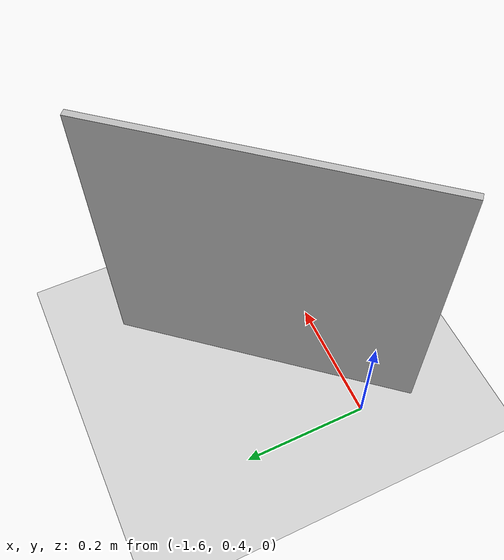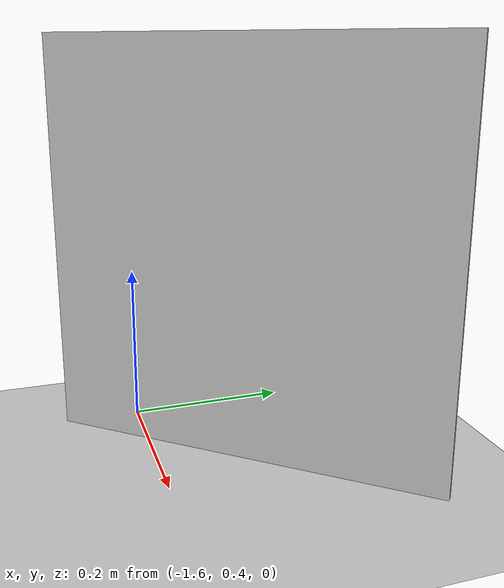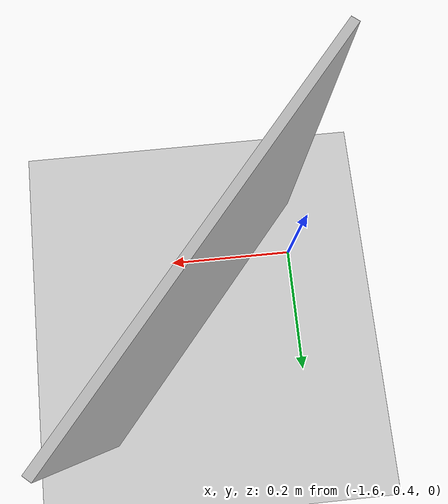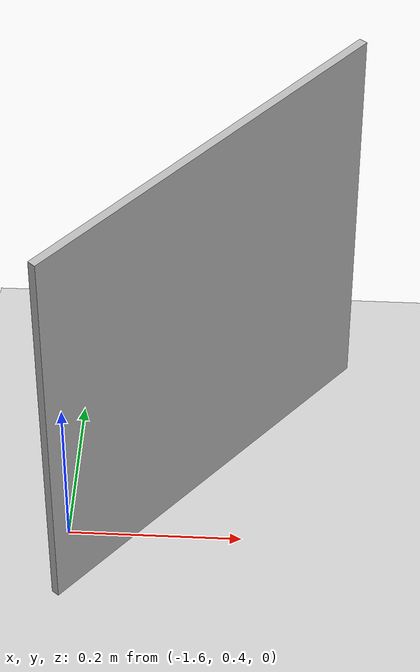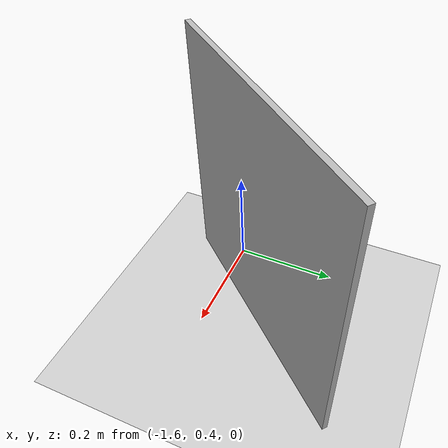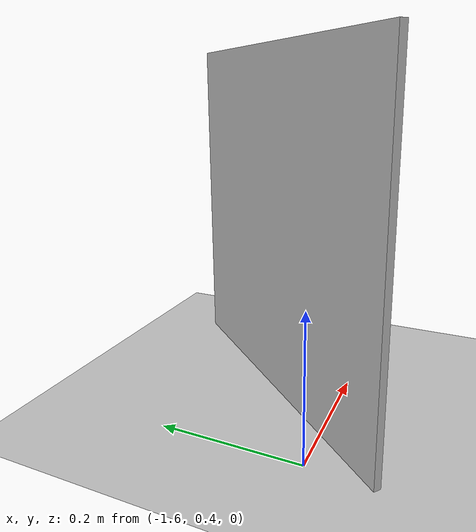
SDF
<sdf version="1.5">
 <world name="default">
  <model name="ground_plane">
   <static>1</static>
   <link name="link">
    <collision name="collision">
     <geometry><plane><normal>0 0 1</normal><size>100 100</size></plane></geometry>
     <surface><friction><ode><mu>100</mu><mu2>50</mu2></ode></friction></surface>
    </collision>
    <visual name="visual">
     <cast_shadows>0</cast_shadows>
     <geometry><plane><normal>0 0 1</normal><size>100 100</size></plane></geometry>
     <material>
      <script><uri>file://media/materials/scripts/gazebo.material</uri><name>Gazebo/Grey</name></script>
     </material>
    </visual>
   </link>
  </model>
  <model name="gate_number_4">
   <pose>-1.44546 0.500226 0.25 0 0 -0.701196</pose>
   <static>1</static>
   <link name="link">
    <collision name="collision"><geometry><box><size>0.01 0.5 0.5</size></box></geometry></collision>
    <visual name="visual">
     <geometry><mesh><uri>model://gate_number_4/meshes/gate_number_4.dae</uri></mesh></geometry>
    </visual>
   </link>
  </model>
 </world>
</sdf>
